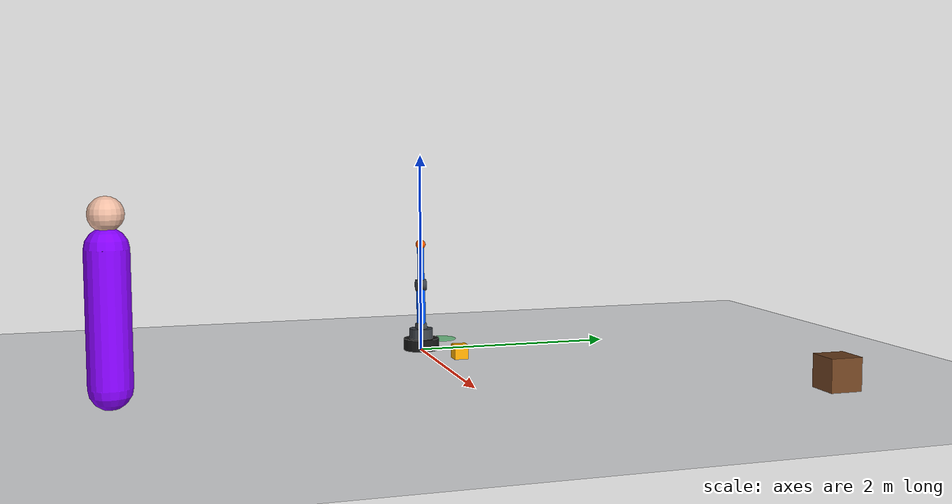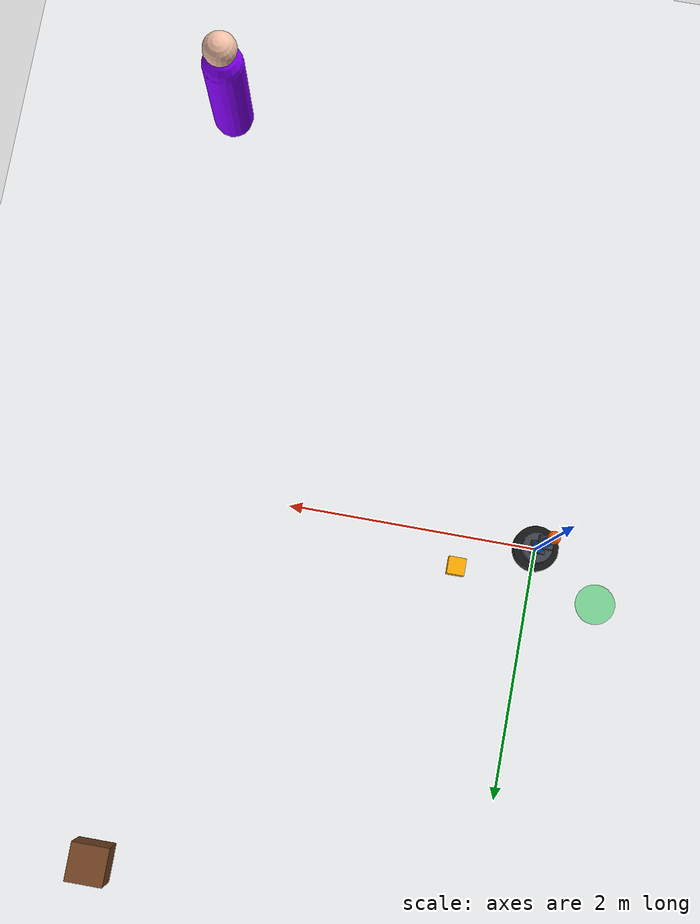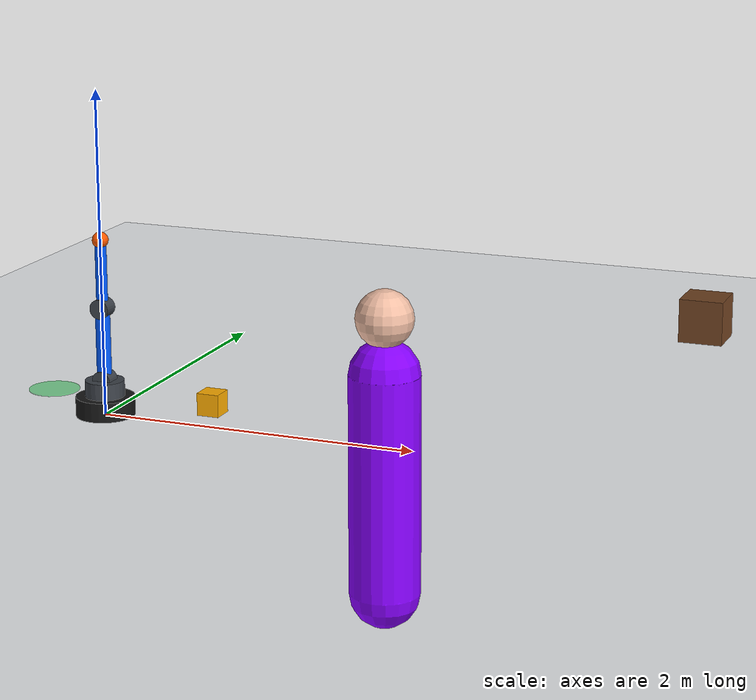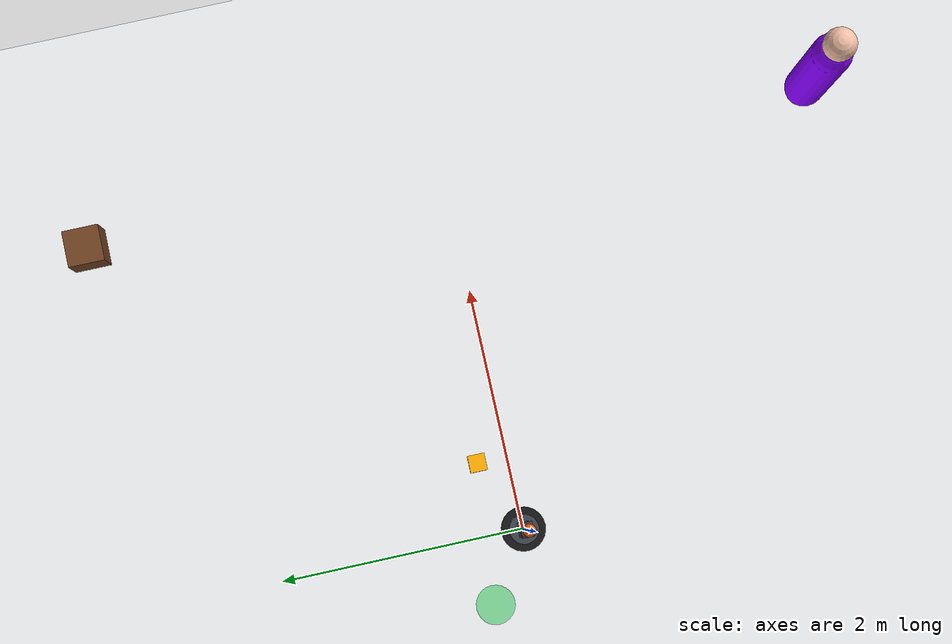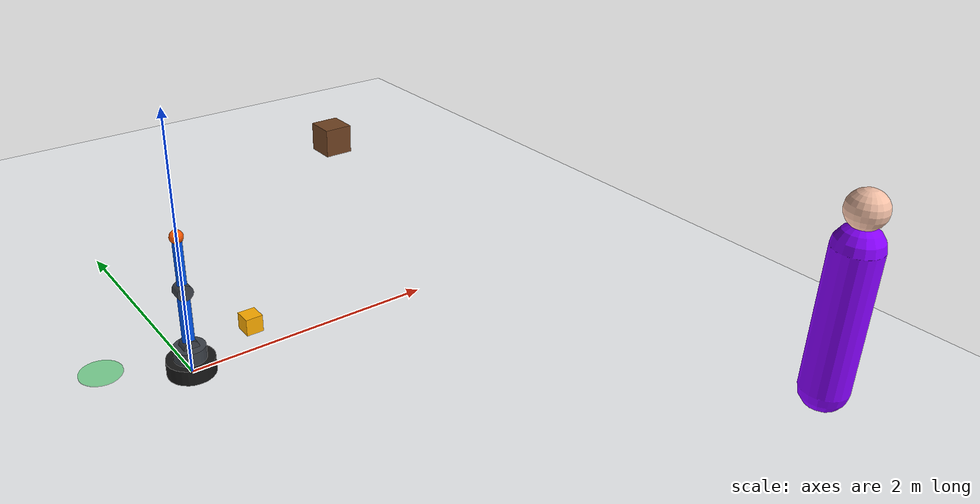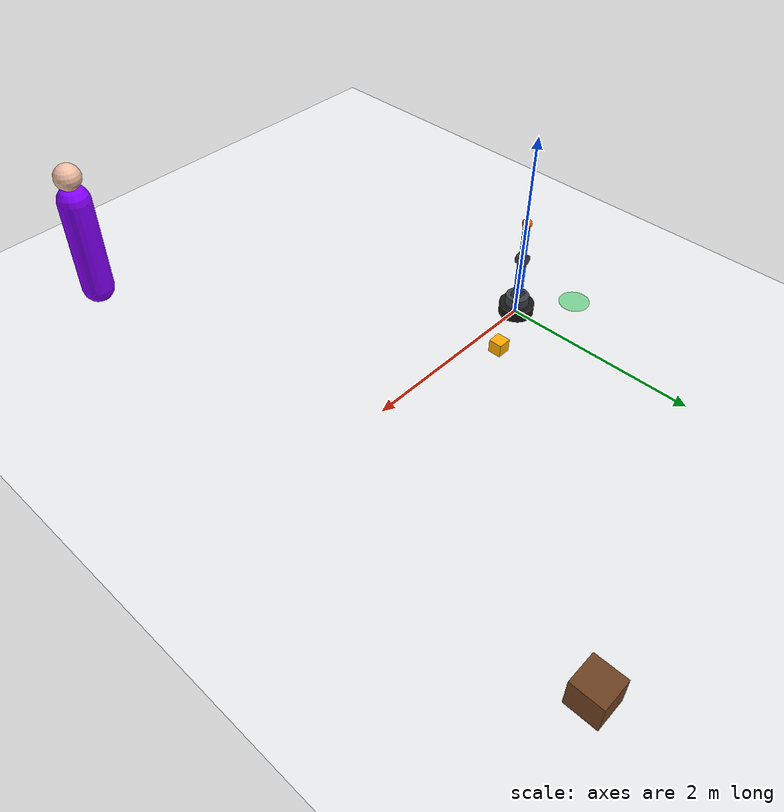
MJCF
<mujoco model="teleop_arm">
  <option timestep="0.002" gravity="0 0 -9.81" integrator="implicitfast"/>

  <default>
    <joint damping="2" armature="0.1"/>
    <geom friction="0.9 0.005 0.0001" condim="3"/>
    <default class="link"><geom type="capsule" size="0.045" rgba="0 0.36 1 1"/></default>
    <default class="joint_vis"><geom type="cylinder" size="0.06 0.05" rgba="0.24 0.26 0.29 1" contype="0" conaffinity="0"/></default>
    <default class="marker"><geom contype="0" conaffinity="0"/></default>
    <position kp="250" kv="20" ctrllimited="true"/>
  </default>

  <worldbody>
    <light pos="0 0 3" dir="0 0 -1"/>
    <geom name="floor" type="plane" size="0 0 0.05" rgba="0.93 0.94 0.95 1"/>
    <geom name="base" type="cylinder" size="0.18 0.06" pos="0 0 0.06" rgba="0.09 0.09 0.09 1"/>

    <!-- drop zone marker (visual only) -->
    <geom name="dropzone" class="marker" type="cylinder" size="0.16 0.004" pos="-0.55 0.35 0.004" rgba="0 0.76 0.19 0.45"/>

    <body name="shoulder" pos="0 0 0.12">
      <joint name="j_yaw" type="hinge" axis="0 0 1" range="-180 180"/>
      <geom class="joint_vis" pos="0 0 0.05" size="0.12 0.05"/>
      <body name="upper_arm" pos="0 0 0.1">
        <joint name="j_shoulder" type="hinge" axis="0 1 0" range="-100 100"/>
        <geom class="joint_vis" euler="90 0 0"/>
        <geom class="link" fromto="0 0 0 0 0 0.45"/>
        <body name="forearm" pos="0 0 0.45">
          <joint name="j_elbow" type="hinge" axis="0 1 0" range="-140 140"/>
          <geom class="joint_vis" euler="90 0 0"/>
          <geom class="link" fromto="0 0 0 0 0 0.4" size="0.035"/>
          <body name="hand" pos="0 0 0.42">
            <geom name="hand" type="sphere" size="0.05" rgba="1 0.35 0 1"/>
            <site name="tip" size="0.01"/>
          </body>
        </body>
      </body>
    </body>

    <!-- the part the robot is supposed to sweep past / inspect -->
    <body name="target" pos="0.6 0.25 0.07">
      <freejoint name="target_free"/>
      <geom name="target" type="box" size="0.07 0.07 0.07" mass="0.3" rgba="1 0.68 0 1"/>
    </body>

    <!-- immovable obstacle (a dropped crate); kinematic so the arm cannot shove it; parked far away until spawned -->
    <body name="obstacle" mocap="true" pos="3 3 0.15">
      <geom name="obstacle" type="box" size="0.15 0.15 0.15" rgba="0.44 0.26 0.13 1"/>
    </body>

    <!-- a person walking into the cell; kinematic (mocap) so it never falls over -->
    <body name="person" mocap="true" pos="3 -3 0.9">
      <geom name="person_body" type="capsule" size="0.16 0.5" rgba="0.53 0 1 1"/>
      <geom name="person_head" type="sphere" size="0.13" pos="0 0 0.75" rgba="0.95 0.75 0.65 1"/>
    </body>
  </worldbody>

  <actuator>
    <position name="yaw" joint="j_yaw" ctrlrange="-3.14 3.14"/>
    <position name="shoulder" joint="j_shoulder" ctrlrange="-1.7 1.7"/>
    <position name="elbow" joint="j_elbow" ctrlrange="-2.4 2.4"/>
  </actuator>
</mujoco>
